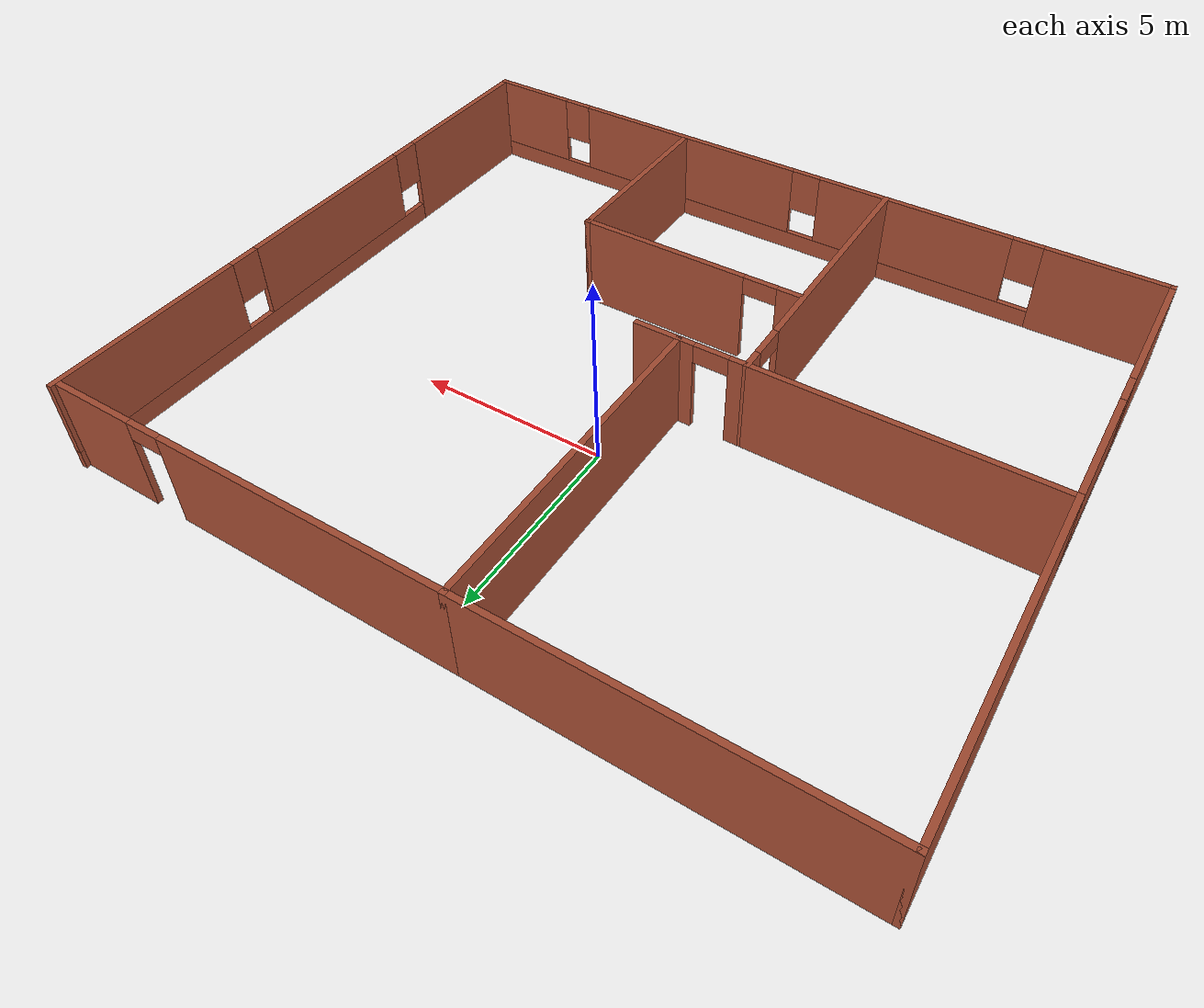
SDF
<?xml version='1.0'?>
<sdf version='1.7'>
  <model name='apartment_1'>
    <pose>-0.052428 -1.75464 0 0 -0 0</pose>
    <link name='Wall_0'>
      <pose>0.000177 -8.175 0 0 -0 0</pose>
      <visual name='Wall_0_Visual_0'>
        <pose>-8.40648 0 1.25 0 -0 0</pose>
        <geometry>
          <box>
            <size>3.18705 0.15 2.5</size>
          </box>
        </geometry>
        <material>
          <script>
            <uri>file://media/materials/scripts/gazebo.material</uri>
            <name>Gazebo/Bricks</name>
          </script>
          <ambient>1 1 1 1</ambient>
        </material>
        <meta>
          <layer>0</layer>
        </meta>
      </visual>
      <collision name='Wall_0_Collision_0'>
        <geometry>
          <box>
            <size>3.18705 0.15 2.5</size>
          </box>
        </geometry>
        <pose>-8.40648 0 1.25 0 -0 0</pose>
      </collision>
      <visual name='Wall_0_Visual_1'>
        <pose>1.59353 0 0.25 0 -0 0</pose>
        <geometry>
          <box>
            <size>16.813 0.15 0.5</size>
          </box>
        </geometry>
        <material>
          <script>
            <uri>file://media/materials/scripts/gazebo.material</uri>
            <name>Gazebo/Bricks</name>
          </script>
          <ambient>1 1 1 1</ambient>
        </material>
        <meta>
          <layer>0</layer>
        </meta>
      </visual>
      <collision name='Wall_0_Collision_1'>
        <geometry>
          <box>
            <size>16.813 0.15 0.5</size>
          </box>
        </geometry>
        <pose>1.59353 0 0.25 0 -0 0</pose>
      </collision>
      <visual name='Wall_0_Visual_2'>
        <pose>-3.34563 0 1.5 0 -0 0</pose>
        <geometry>
          <box>
            <size>5.33464 0.15 2</size>
          </box>
        </geometry>
        <material>
          <script>
            <uri>file://media/materials/scripts/gazebo.material</uri>
            <name>Gazebo/Bricks</name>
          </script>
          <ambient>1 1 1 1</ambient>
        </material>
        <meta>
          <layer>0</layer>
        </meta>
      </visual>
      <collision name='Wall_0_Collision_2'>
        <geometry>
          <box>
            <size>5.33464 0.15 2</size>
          </box>
        </geometry>
        <pose>-3.34563 0 1.5 0 -0 0</pose>
      </collision>
      <visual name='Wall_0_Visual_3'>
        <pose>3.46948 0 1.5 0 -0 0</pose>
        <geometry>
          <box>
            <size>6.69557 0.15 2</size>
          </box>
        </geometry>
        <material>
          <script>
            <uri>file://media/materials/scripts/gazebo.material</uri>
            <name>Gazebo/Bricks</name>
          </script>
          <ambient>1 1 1 1</ambient>
        </material>
        <meta>
          <layer>0</layer>
        </meta>
      </visual>
      <collision name='Wall_0_Collision_3'>
        <geometry>
          <box>
            <size>6.69557 0.15 2</size>
          </box>
        </geometry>
        <pose>3.46948 0 1.5 0 -0 0</pose>
      </collision>
      <visual name='Wall_0_Visual_4'>
        <pose>8.80863 0 1.5 0 -0 0</pose>
        <geometry>
          <box>
            <size>2.38274 0.15 2</size>
          </box>
        </geometry>
        <material>
          <script>
            <uri>file://media/materials/scripts/gazebo.material</uri>
            <name>Gazebo/Bricks</name>
          </script>
          <ambient>1 1 1 1</ambient>
        </material>
        <meta>
          <layer>0</layer>
        </meta>
      </visual>
      <collision name='Wall_0_Collision_4'>
        <geometry>
          <box>
            <size>2.38274 0.15 2</size>
          </box>
        </geometry>
        <pose>8.80863 0 1.5 0 -0 0</pose>
      </collision>
      <visual name='Wall_0_Visual_5'>
        <pose>-6.41295 0 1.9 0 -0 0</pose>
        <geometry>
          <box>
            <size>0.8 0.15 1.2</size>
          </box>
        </geometry>
        <material>
          <script>
            <uri>file://media/materials/scripts/gazebo.material</uri>
            <name>Gazebo/Bricks</name>
          </script>
          <ambient>1 1 1 1</ambient>
        </material>
        <meta>
          <layer>0</layer>
        </meta>
      </visual>
      <collision name='Wall_0_Collision_5'>
        <geometry>
          <box>
            <size>0.8 0.15 1.2</size>
          </box>
        </geometry>
        <pose>-6.41295 0 1.9 0 -0 0</pose>
      </collision>
      <visual name='Wall_0_Visual_6'>
        <pose>-0.278311 0 1.9 0 -0 0</pose>
        <geometry>
          <box>
            <size>0.8 0.15 1.2</size>
          </box>
        </geometry>
        <material>
          <script>
            <uri>file://media/materials/scripts/gazebo.material</uri>
            <name>Gazebo/Bricks</name>
          </script>
          <ambient>1 1 1 1</ambient>
        </material>
        <meta>
          <layer>0</layer>
        </meta>
      </visual>
      <collision name='Wall_0_Collision_6'>
        <geometry>
          <box>
            <size>0.8 0.15 1.2</size>
          </box>
        </geometry>
        <pose>-0.278311 0 1.9 0 -0 0</pose>
      </collision>
      <visual name='Wall_0_Visual_7'>
        <pose>7.21726 0 1.9 0 -0 0</pose>
        <geometry>
          <box>
            <size>0.8 0.15 1.2</size>
          </box>
        </geometry>
        <material>
          <script>
            <uri>file://media/materials/scripts/gazebo.material</uri>
            <name>Gazebo/Bricks</name>
          </script>
          <ambient>1 1 1 1</ambient>
        </material>
        <meta>
          <layer>0</layer>
        </meta>
      </visual>
      <collision name='Wall_0_Collision_7'>
        <geometry>
          <box>
            <size>0.8 0.15 1.2</size>
          </box>
        </geometry>
        <pose>7.21726 0 1.9 0 -0 0</pose>
      </collision>
    </link>
    <link name='Wall_10'>
      <collision name='Wall_10_Collision'>
        <geometry>
          <box>
            <size>5 0.15 2.5</size>
          </box>
        </geometry>
        <pose>0 0 1.25 0 -0 0</pose>
      </collision>
      <visual name='Wall_10_Visual'>
        <pose>0 0 1.25 0 -0 0</pose>
        <geometry>
          <box>
            <size>5 0.15 2.5</size>
          </box>
        </geometry>
        <material>
          <script>
            <uri>file://media/materials/scripts/gazebo.material</uri>
            <name>Gazebo/Bricks</name>
          </script>
          <ambient>1 1 1 1</ambient>
        </material>
        <meta>
          <layer>0</layer>
        </meta>
      </visual>
      <pose>3.52892 -5.60705 0 0 -0 -1.5708</pose>
    </link>
    <link name='Wall_12'>
      <pose>-1.14982 -0.325 0 0 -0 0</pose>
      <visual name='Wall_12_Visual_0'>
        <pose>-1.24313 0 1.25 0 -0 0</pose>
        <geometry>
          <box>
            <size>0.513739 0.15 2.5</size>
          </box>
        </geometry>
        <material>
          <script>
            <uri>file://media/materials/scripts/gazebo.material</uri>
            <name>Gazebo/Bricks</name>
          </script>
          <ambient>1 1 1 1</ambient>
        </material>
        <meta>
          <layer>0</layer>
        </meta>
      </visual>
      <collision name='Wall_12_Collision_0'>
        <geometry>
          <box>
            <size>0.513739 0.15 2.5</size>
          </box>
        </geometry>
        <pose>-1.24313 0 1.25 0 -0 0</pose>
      </collision>
      <visual name='Wall_12_Visual_1'>
        <pose>0.70687 0 1.25 0 -0 0</pose>
        <geometry>
          <box>
            <size>1.58626 0.15 2.5</size>
          </box>
        </geometry>
        <material>
          <script>
            <uri>file://media/materials/scripts/gazebo.material</uri>
            <name>Gazebo/Bricks</name>
          </script>
          <ambient>1 1 1 1</ambient>
        </material>
        <meta>
          <layer>0</layer>
        </meta>
      </visual>
      <collision name='Wall_12_Collision_1'>
        <geometry>
          <box>
            <size>1.58626 0.15 2.5</size>
          </box>
        </geometry>
        <pose>0.70687 0 1.25 0 -0 0</pose>
      </collision>
      <visual name='Wall_12_Visual_2'>
        <pose>-0.536261 0 2.25 0 -0 0</pose>
        <geometry>
          <box>
            <size>0.9 0.15 0.5</size>
          </box>
        </geometry>
        <material>
          <script>
            <uri>file://media/materials/scripts/gazebo.material</uri>
            <name>Gazebo/Bricks</name>
          </script>
          <ambient>1 1 1 1</ambient>
        </material>
        <meta>
          <layer>0</layer>
        </meta>
      </visual>
      <collision name='Wall_12_Collision_2'>
        <geometry>
          <box>
            <size>0.9 0.15 0.5</size>
          </box>
        </geometry>
        <pose>-0.536261 0 2.25 0 -0 0</pose>
      </collision>
    </link>
    <link name='Wall_16'>
      <collision name='Wall_16_Collision'>
        <geometry>
          <box>
            <size>8.5 0.15 2.5</size>
          </box>
        </geometry>
        <pose>0 0 1.25 0 -0 0</pose>
      </collision>
      <visual name='Wall_16_Visual'>
        <pose>0 0 1.25 0 -0 0</pose>
        <geometry>
          <box>
            <size>8.5 0.15 2.5</size>
          </box>
        </geometry>
        <material>
          <script>
            <uri>file://media/materials/scripts/gazebo.material</uri>
            <name>Gazebo/Bricks</name>
          </script>
          <ambient>1 1 1 1</ambient>
        </material>
        <meta>
          <layer>0</layer>
        </meta>
      </visual>
      <pose>-9.92482 3.89023 0 0 -0 1.5708</pose>
    </link>
    <link name='Wall_17'>
      <collision name='Wall_17_Collision'>
        <geometry>
          <box>
            <size>9.25 0.15 2.5</size>
          </box>
        </geometry>
        <pose>0 0 1.25 0 -0 0</pose>
      </collision>
      <visual name='Wall_17_Visual'>
        <pose>0 0 1.25 0 -0 0</pose>
        <geometry>
          <box>
            <size>9.25 0.15 2.5</size>
          </box>
        </geometry>
        <material>
          <script>
            <uri>file://media/materials/scripts/gazebo.material</uri>
            <name>Gazebo/Bricks</name>
          </script>
          <ambient>1 1 1 1</ambient>
        </material>
        <meta>
          <layer>0</layer>
        </meta>
      </visual>
      <pose>-5.37482 8.06523 0 0 -0 0</pose>
    </link>
    <link name='Wall_18'>
      <collision name='Wall_18_Collision'>
        <geometry>
          <box>
            <size>8.5 0.15 2.5</size>
          </box>
        </geometry>
        <pose>0 0 1.25 0 -0 0</pose>
      </collision>
      <visual name='Wall_18_Visual'>
        <pose>0 0 1.25 0 -0 0</pose>
        <geometry>
          <box>
            <size>8.5 0.15 2.5</size>
          </box>
        </geometry>
        <material>
          <script>
            <uri>file://media/materials/scripts/gazebo.material</uri>
            <name>Gazebo/Bricks</name>
          </script>
          <ambient>1 1 1 1</ambient>
        </material>
        <meta>
          <layer>0</layer>
        </meta>
      </visual>
      <pose>-0.824823 3.89023 0 0 -0 -1.5708</pose>
    </link>
    <link name='Wall_2'>
      <pose>-9.92482 -4.22989 0 0 -0 1.5708</pose>
      <visual name='Wall_2_Visual_0'>
        <pose>-2.06757 0 1.25 0 -0 0</pose>
        <geometry>
          <box>
            <size>3.90508 0.15 2.5</size>
          </box>
        </geometry>
        <material>
          <script>
            <uri>file://media/materials/scripts/gazebo.material</uri>
            <name>Gazebo/Bricks</name>
          </script>
          <ambient>1 1 1 1</ambient>
        </material>
        <meta>
          <layer>0</layer>
        </meta>
      </visual>
      <collision name='Wall_2_Collision_0'>
        <geometry>
          <box>
            <size>3.90508 0.15 2.5</size>
          </box>
        </geometry>
        <pose>-2.06757 0 1.25 0 -0 0</pose>
      </collision>
      <visual name='Wall_2_Visual_1'>
        <pose>1.95254 0 0.25 0 -0 0</pose>
        <geometry>
          <box>
            <size>4.13514 0.15 0.5</size>
          </box>
        </geometry>
        <material>
          <script>
            <uri>file://media/materials/scripts/gazebo.material</uri>
            <name>Gazebo/Bricks</name>
          </script>
          <ambient>1 1 1 1</ambient>
        </material>
        <meta>
          <layer>0</layer>
        </meta>
      </visual>
      <collision name='Wall_2_Collision_1'>
        <geometry>
          <box>
            <size>4.13514 0.15 0.5</size>
          </box>
        </geometry>
        <pose>1.95254 0 0.25 0 -0 0</pose>
      </collision>
      <visual name='Wall_2_Visual_2'>
        <pose>2.35254 0 1.5 0 -0 0</pose>
        <geometry>
          <box>
            <size>3.33514 0.15 2</size>
          </box>
        </geometry>
        <material>
          <script>
            <uri>file://media/materials/scripts/gazebo.material</uri>
            <name>Gazebo/Bricks</name>
          </script>
          <ambient>1 1 1 1</ambient>
        </material>
        <meta>
          <layer>0</layer>
        </meta>
      </visual>
      <collision name='Wall_2_Collision_2'>
        <geometry>
          <box>
            <size>3.33514 0.15 2</size>
          </box>
        </geometry>
        <pose>2.35254 0 1.5 0 -0 0</pose>
      </collision>
      <visual name='Wall_2_Visual_3'>
        <pose>0.284971 0 1.9 0 -0 0</pose>
        <geometry>
          <box>
            <size>0.8 0.15 1.2</size>
          </box>
        </geometry>
        <material>
          <script>
            <uri>file://media/materials/scripts/gazebo.material</uri>
            <name>Gazebo/Bricks</name>
          </script>
          <ambient>1 1 1 1</ambient>
        </material>
        <meta>
          <layer>0</layer>
        </meta>
      </visual>
      <collision name='Wall_2_Collision_3'>
        <geometry>
          <box>
            <size>0.8 0.15 1.2</size>
          </box>
        </geometry>
        <pose>0.284971 0 1.9 0 -0 0</pose>
      </collision>
    </link>
    <link name='Wall_20'>
      <pose>4.47518 8.06523 0 0 -0 0</pose>
      <visual name='Wall_20_Visual_0'>
        <pose>-1.58182 0 1.25 0 -0 0</pose>
        <geometry>
          <box>
            <size>7.58635 0.15 2.5</size>
          </box>
        </geometry>
        <material>
          <script>
            <uri>file://media/materials/scripts/gazebo.material</uri>
            <name>Gazebo/Bricks</name>
          </script>
          <ambient>1 1 1 1</ambient>
        </material>
        <meta>
          <layer>0</layer>
        </meta>
      </visual>
      <collision name='Wall_20_Collision_0'>
        <geometry>
          <box>
            <size>7.58635 0.15 2.5</size>
          </box>
        </geometry>
        <pose>-1.58182 0 1.25 0 -0 0</pose>
      </collision>
      <visual name='Wall_20_Visual_1'>
        <pose>4.24318 0 1.25 0 -0 0</pose>
        <geometry>
          <box>
            <size>2.26365 0.15 2.5</size>
          </box>
        </geometry>
        <material>
          <script>
            <uri>file://media/materials/scripts/gazebo.material</uri>
            <name>Gazebo/Bricks</name>
          </script>
          <ambient>1 1 1 1</ambient>
        </material>
        <meta>
          <layer>0</layer>
        </meta>
      </visual>
      <collision name='Wall_20_Collision_1'>
        <geometry>
          <box>
            <size>2.26365 0.15 2.5</size>
          </box>
        </geometry>
        <pose>4.24318 0 1.25 0 -0 0</pose>
      </collision>
      <visual name='Wall_20_Visual_2'>
        <pose>2.66135 0 2.25 0 -0 0</pose>
        <geometry>
          <box>
            <size>0.9 0.15 0.5</size>
          </box>
        </geometry>
        <material>
          <script>
            <uri>file://media/materials/scripts/gazebo.material</uri>
            <name>Gazebo/Bricks</name>
          </script>
          <ambient>1 1 1 1</ambient>
        </material>
        <meta>
          <layer>0</layer>
        </meta>
      </visual>
      <collision name='Wall_20_Collision_2'>
        <geometry>
          <box>
            <size>0.9 0.15 0.5</size>
          </box>
        </geometry>
        <pose>2.66135 0 2.25 0 -0 0</pose>
      </collision>
    </link>
    <link name='Wall_22'>
      <pose>9.92518 0 0 0 -0 1.5708</pose>
      <visual name='Wall_22_Visual_0'>
        <pose>-6.03086 0 1.25 0 -0 0</pose>
        <geometry>
          <box>
            <size>4.43828 0.15 2.5</size>
          </box>
        </geometry>
        <material>
          <script>
            <uri>file://media/materials/scripts/gazebo.material</uri>
            <name>Gazebo/Bricks</name>
          </script>
          <ambient>1 1 1 1</ambient>
        </material>
        <meta>
          <layer>0</layer>
        </meta>
      </visual>
      <collision name='Wall_22_Collision_0'>
        <geometry>
          <box>
            <size>4.43828 0.15 2.5</size>
          </box>
        </geometry>
        <pose>-6.03086 0 1.25 0 -0 0</pose>
      </collision>
      <visual name='Wall_22_Visual_1'>
        <pose>2.21914 0 0.25 0 -0 0</pose>
        <geometry>
          <box>
            <size>12.0617 0.15 0.5</size>
          </box>
        </geometry>
        <material>
          <script>
            <uri>file://media/materials/scripts/gazebo.material</uri>
            <name>Gazebo/Bricks</name>
          </script>
          <ambient>1 1 1 1</ambient>
        </material>
        <meta>
          <layer>0</layer>
        </meta>
      </visual>
      <collision name='Wall_22_Collision_1'>
        <geometry>
          <box>
            <size>12.0617 0.15 0.5</size>
          </box>
        </geometry>
        <pose>2.21914 0 0.25 0 -0 0</pose>
      </collision>
      <visual name='Wall_22_Visual_2'>
        <pose>-0.397776 0 1.5 0 -0 0</pose>
        <geometry>
          <box>
            <size>5.22788 0.15 2</size>
          </box>
        </geometry>
        <material>
          <script>
            <uri>file://media/materials/scripts/gazebo.material</uri>
            <name>Gazebo/Bricks</name>
          </script>
          <ambient>1 1 1 1</ambient>
        </material>
        <meta>
          <layer>0</layer>
        </meta>
      </visual>
      <collision name='Wall_22_Collision_2'>
        <geometry>
          <box>
            <size>5.22788 0.15 2</size>
          </box>
        </geometry>
        <pose>-0.397776 0 1.5 0 -0 0</pose>
      </collision>
      <visual name='Wall_22_Visual_3'>
        <pose>5.63308 0 1.5 0 -0 0</pose>
        <geometry>
          <box>
            <size>5.23384 0.15 2</size>
          </box>
        </geometry>
        <material>
          <script>
            <uri>file://media/materials/scripts/gazebo.material</uri>
            <name>Gazebo/Bricks</name>
          </script>
          <ambient>1 1 1 1</ambient>
        </material>
        <meta>
          <layer>0</layer>
        </meta>
      </visual>
      <collision name='Wall_22_Collision_3'>
        <geometry>
          <box>
            <size>5.23384 0.15 2</size>
          </box>
        </geometry>
        <pose>5.63308 0 1.5 0 -0 0</pose>
      </collision>
      <visual name='Wall_22_Visual_4'>
        <pose>-3.41172 0 1.9 0 -0 0</pose>
        <geometry>
          <box>
            <size>0.8 0.15 1.2</size>
          </box>
        </geometry>
        <material>
          <script>
            <uri>file://media/materials/scripts/gazebo.material</uri>
            <name>Gazebo/Bricks</name>
          </script>
          <ambient>1 1 1 1</ambient>
        </material>
        <meta>
          <layer>0</layer>
        </meta>
      </visual>
      <collision name='Wall_22_Collision_4'>
        <geometry>
          <box>
            <size>0.8 0.15 1.2</size>
          </box>
        </geometry>
        <pose>-3.41172 0 1.9 0 -0 0</pose>
      </collision>
      <visual name='Wall_22_Visual_5'>
        <pose>2.61617 0 1.9 0 -0 0</pose>
        <geometry>
          <box>
            <size>0.8 0.15 1.2</size>
          </box>
        </geometry>
        <material>
          <script>
            <uri>file://media/materials/scripts/gazebo.material</uri>
            <name>Gazebo/Bricks</name>
          </script>
          <ambient>1 1 1 1</ambient>
        </material>
        <meta>
          <layer>0</layer>
        </meta>
      </visual>
      <collision name='Wall_22_Collision_5'>
        <geometry>
          <box>
            <size>0.8 0.15 1.2</size>
          </box>
        </geometry>
        <pose>2.61617 0 1.9 0 -0 0</pose>
      </collision>
    </link>
    <link name='Wall_3'>
      <collision name='Wall_3_Collision'>
        <geometry>
          <box>
            <size>7.5 0.15 2.5</size>
          </box>
        </geometry>
        <pose>0 0 1.25 0 -0 0</pose>
      </collision>
      <visual name='Wall_3_Visual'>
        <pose>0 0 1.25 0 -0 0</pose>
        <geometry>
          <box>
            <size>7.5 0.15 2.5</size>
          </box>
        </geometry>
        <material>
          <script>
            <uri>file://media/materials/scripts/gazebo.material</uri>
            <name>Gazebo/Bricks</name>
          </script>
          <ambient>1 1 1 1</ambient>
        </material>
        <meta>
          <layer>0</layer>
        </meta>
      </visual>
      <pose>-6.24982 -0.304886 0 0 -0 -0.005473</pose>
    </link>
    <link name='Wall_4'>
      <pose>-2.57482 -4.25 0 0 -0 -1.5708</pose>
      <visual name='Wall_4_Visual_0'>
        <pose>-3.71437 0 1.25 0 -0 0</pose>
        <geometry>
          <box>
            <size>0.571263 0.15 2.5</size>
          </box>
        </geometry>
        <material>
          <script>
            <uri>file://media/materials/scripts/gazebo.material</uri>
            <name>Gazebo/Bricks</name>
          </script>
          <ambient>1 1 1 1</ambient>
        </material>
        <meta>
          <layer>0</layer>
        </meta>
      </visual>
      <collision name='Wall_4_Collision_0'>
        <geometry>
          <box>
            <size>0.571263 0.15 2.5</size>
          </box>
        </geometry>
        <pose>-3.71437 0 1.25 0 -0 0</pose>
      </collision>
      <visual name='Wall_4_Visual_1'>
        <pose>0.735632 0 1.25 0 -0 0</pose>
        <geometry>
          <box>
            <size>6.52874 0.15 2.5</size>
          </box>
        </geometry>
        <material>
          <script>
            <uri>file://media/materials/scripts/gazebo.material</uri>
            <name>Gazebo/Bricks</name>
          </script>
          <ambient>1 1 1 1</ambient>
        </material>
        <meta>
          <layer>0</layer>
        </meta>
      </visual>
      <collision name='Wall_4_Collision_1'>
        <geometry>
          <box>
            <size>6.52874 0.15 2.5</size>
          </box>
        </geometry>
        <pose>0.735632 0 1.25 0 -0 0</pose>
      </collision>
      <visual name='Wall_4_Visual_2'>
        <pose>-2.97874 0 2.25 0 -0 0</pose>
        <geometry>
          <box>
            <size>0.9 0.15 0.5</size>
          </box>
        </geometry>
        <material>
          <script>
            <uri>file://media/materials/scripts/gazebo.material</uri>
            <name>Gazebo/Bricks</name>
          </script>
          <ambient>1 1 1 1</ambient>
        </material>
        <meta>
          <layer>0</layer>
        </meta>
      </visual>
      <collision name='Wall_4_Collision_2'>
        <geometry>
          <box>
            <size>0.9 0.15 0.5</size>
          </box>
        </geometry>
        <pose>-2.97874 0 2.25 0 -0 0</pose>
      </collision>
    </link>
    <link name='Wall_9'>
      <pose>0.478919 -3.18205 0 0 -0 0</pose>
      <visual name='Wall_9_Visual_0'>
        <pose>-2.74932 0 1.25 0 -0 0</pose>
        <geometry>
          <box>
            <size>0.75136 0.15 2.5</size>
          </box>
        </geometry>
        <material>
          <script>
            <uri>file://media/materials/scripts/gazebo.material</uri>
            <name>Gazebo/Bricks</name>
          </script>
          <ambient>1 1 1 1</ambient>
        </material>
        <meta>
          <layer>0</layer>
        </meta>
      </visual>
      <collision name='Wall_9_Collision_0'>
        <geometry>
          <box>
            <size>0.75136 0.15 2.5</size>
          </box>
        </geometry>
        <pose>-2.74932 0 1.25 0 -0 0</pose>
      </collision>
      <visual name='Wall_9_Visual_1'>
        <pose>0.82568 0 1.25 0 -0 0</pose>
        <geometry>
          <box>
            <size>4.59864 0.15 2.5</size>
          </box>
        </geometry>
        <material>
          <script>
            <uri>file://media/materials/scripts/gazebo.material</uri>
            <name>Gazebo/Bricks</name>
          </script>
          <ambient>1 1 1 1</ambient>
        </material>
        <meta>
          <layer>0</layer>
        </meta>
      </visual>
      <collision name='Wall_9_Collision_1'>
        <geometry>
          <box>
            <size>4.59864 0.15 2.5</size>
          </box>
        </geometry>
        <pose>0.82568 0 1.25 0 -0 0</pose>
      </collision>
      <visual name='Wall_9_Visual_2'>
        <pose>-1.92364 0 2.25 0 -0 0</pose>
        <geometry>
          <box>
            <size>0.9 0.15 0.5</size>
          </box>
        </geometry>
        <material>
          <script>
            <uri>file://media/materials/scripts/gazebo.material</uri>
            <name>Gazebo/Bricks</name>
          </script>
          <ambient>1 1 1 1</ambient>
        </material>
        <meta>
          <layer>0</layer>
        </meta>
      </visual>
      <collision name='Wall_9_Collision_2'>
        <geometry>
          <box>
            <size>0.9 0.15 0.5</size>
          </box>
        </geometry>
        <pose>-1.92364 0 2.25 0 -0 0</pose>
      </collision>
    </link>
    <static>1</static>
  </model>
</sdf>
